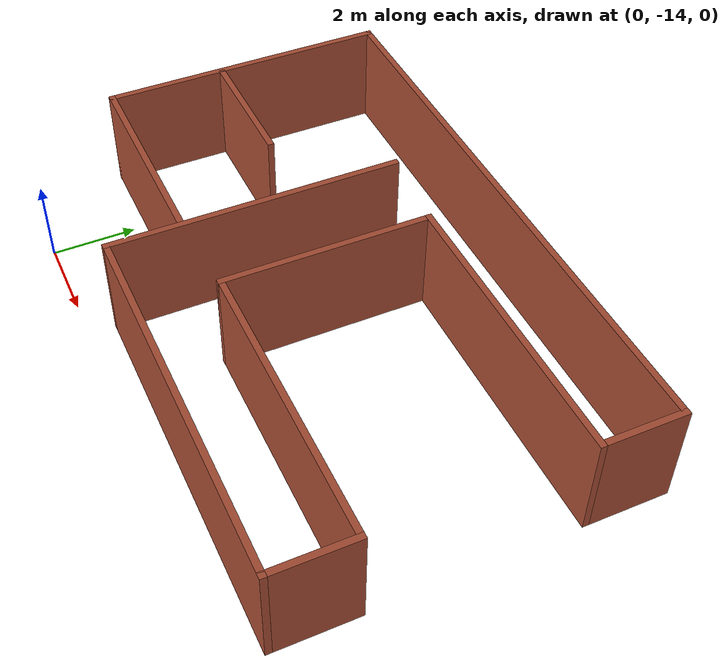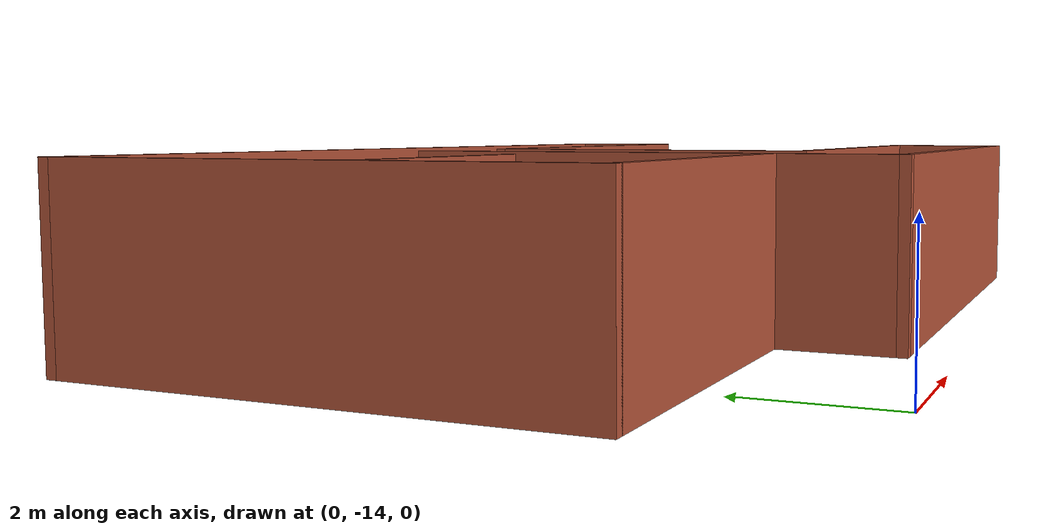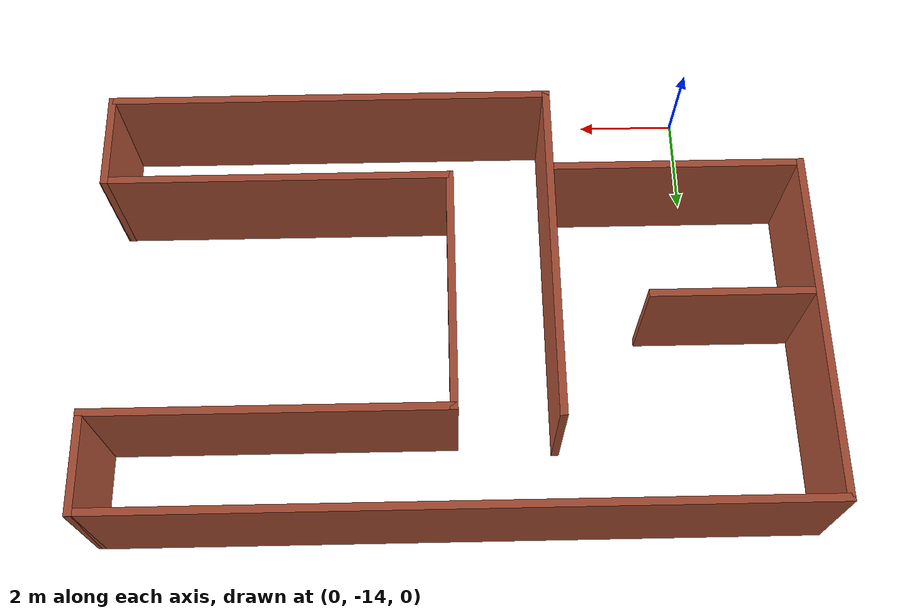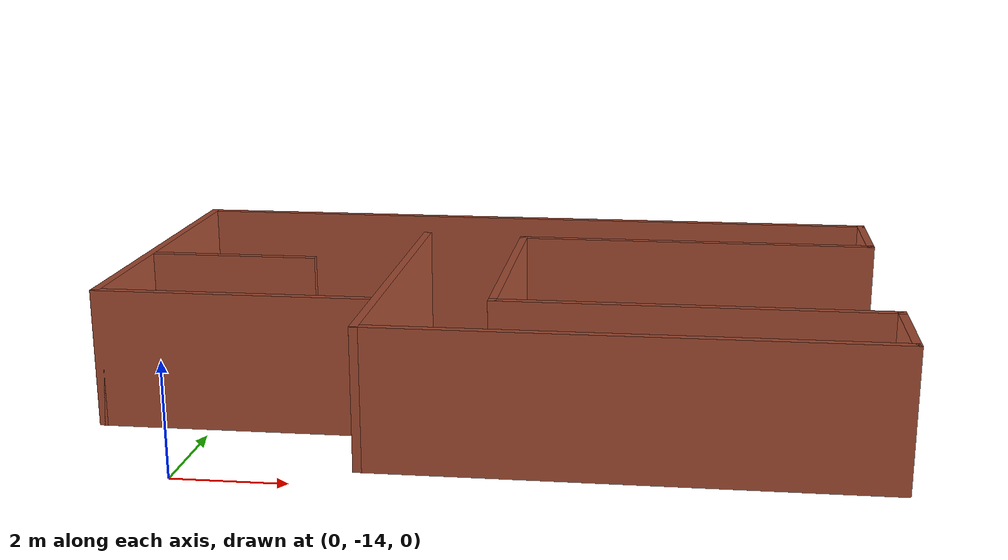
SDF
<?xml version='1.0'?>
<sdf version='1.7'>
  <model name='experiment4_walls_model'>
    <pose>4.915 -6.6925 0 0 -0 0</pose>
    <link name='Wall_0'>
      <collision name='Wall_0_Collision'>
        <geometry>
          <box>
            <size>14 0.15 2.5</size>
          </box>
        </geometry>
        <pose>0 0 1.25 0 -0 0</pose>
      </collision>
      <visual name='Wall_0_Visual'>
        <pose>0 0 1.25 0 -0 0</pose>
        <geometry>
          <box>
            <size>14 0.15 2.5</size>
          </box>
        </geometry>
        <material>
          <script>
            <uri>file://media/materials/scripts/gazebo.material</uri>
            <name>Gazebo/Bricks</name>
          </script>
          <ambient>1 1 1 1</ambient>
        </material>
        <meta>
          <layer>0</layer>
        </meta>
      </visual>
      <pose>0 1.9325 0 0 -0 0</pose>
    </link>
    <link name='Wall_1'>
      <collision name='Wall_1_Collision'>
        <geometry>
          <box>
            <size>2 0.15 2.5</size>
          </box>
        </geometry>
        <pose>0 0 1.25 0 -0 0</pose>
      </collision>
      <visual name='Wall_1_Visual'>
        <pose>0 0 1.25 0 -0 0</pose>
        <geometry>
          <box>
            <size>2 0.15 2.5</size>
          </box>
        </geometry>
        <material>
          <script>
            <uri>file://media/materials/scripts/gazebo.material</uri>
            <name>Gazebo/Bricks</name>
          </script>
          <ambient>1 1 1 1</ambient>
        </material>
        <meta>
          <layer>0</layer>
        </meta>
      </visual>
      <pose>6.925 1.0075 0 0 -0 -1.5708</pose>
    </link>
    <link name='Wall_11'>
      <collision name='Wall_11_Collision'>
        <geometry>
          <box>
            <size>7 0.15 2.5</size>
          </box>
        </geometry>
        <pose>0 0 1.25 0 -0 0</pose>
      </collision>
      <visual name='Wall_11_Visual'>
        <pose>0 0 1.25 0 -0 0</pose>
        <geometry>
          <box>
            <size>7 0.15 2.5</size>
          </box>
        </geometry>
        <material>
          <script>
            <uri>file://media/materials/scripts/gazebo.material</uri>
            <name>Gazebo/Bricks</name>
          </script>
          <ambient>1 1 1 1</ambient>
        </material>
        <meta>
          <layer>0</layer>
        </meta>
      </visual>
      <pose>-6.925 -1.4925 0 0 -0 -1.5708</pose>
    </link>
    <link name='Wall_12'>
      <collision name='Wall_12_Collision'>
        <geometry>
          <box>
            <size>5 0.15 2.5</size>
          </box>
        </geometry>
        <pose>0 0 1.25 0 -0 0</pose>
      </collision>
      <visual name='Wall_12_Visual'>
        <pose>0 0 1.25 0 -0 0</pose>
        <geometry>
          <box>
            <size>5 0.15 2.5</size>
          </box>
        </geometry>
        <material>
          <script>
            <uri>file://media/materials/scripts/gazebo.material</uri>
            <name>Gazebo/Bricks</name>
          </script>
          <ambient>1 1 1 1</ambient>
        </material>
        <meta>
          <layer>0</layer>
        </meta>
      </visual>
      <pose>-4.5 -4.9175 0 0 -0 0</pose>
    </link>
    <link name='Wall_17'>
      <collision name='Wall_17_Collision'>
        <geometry>
          <box>
            <size>3.25 0.15 2.5</size>
          </box>
        </geometry>
        <pose>0 0 1.25 0 -0 0</pose>
      </collision>
      <visual name='Wall_17_Visual'>
        <pose>0 0 1.25 0 -0 0</pose>
        <geometry>
          <box>
            <size>3.25 0.15 2.5</size>
          </box>
        </geometry>
        <material>
          <script>
            <uri>file://media/materials/scripts/gazebo.material</uri>
            <name>Gazebo/Bricks</name>
          </script>
          <ambient>1 1 1 1</ambient>
        </material>
        <meta>
          <layer>0</layer>
        </meta>
      </visual>
      <pose>-5.30211 -2.10555 0 0 -0 0</pose>
    </link>
    <link name='Wall_2'>
      <collision name='Wall_2_Collision'>
        <geometry>
          <box>
            <size>7 0.15 2.5</size>
          </box>
        </geometry>
        <pose>0 0 1.25 0 -0 0</pose>
      </collision>
      <visual name='Wall_2_Visual'>
        <pose>0 0 1.25 0 -0 0</pose>
        <geometry>
          <box>
            <size>7 0.15 2.5</size>
          </box>
        </geometry>
        <material>
          <script>
            <uri>file://media/materials/scripts/gazebo.material</uri>
            <name>Gazebo/Bricks</name>
          </script>
          <ambient>1 1 1 1</ambient>
        </material>
        <meta>
          <layer>0</layer>
        </meta>
      </visual>
      <pose>3.5 0.0825 0 0 -0 3.14159</pose>
    </link>
    <link name='Wall_3'>
      <collision name='Wall_3_Collision'>
        <geometry>
          <box>
            <size>5 0.15 2.5</size>
          </box>
        </geometry>
        <pose>0 0 1.25 0 -0 0</pose>
      </collision>
      <visual name='Wall_3_Visual'>
        <pose>0 0 1.25 0 -0 0</pose>
        <geometry>
          <box>
            <size>5 0.15 2.5</size>
          </box>
        </geometry>
        <material>
          <script>
            <uri>file://media/materials/scripts/gazebo.material</uri>
            <name>Gazebo/Bricks</name>
          </script>
          <ambient>1 1 1 1</ambient>
        </material>
        <meta>
          <layer>0</layer>
        </meta>
      </visual>
      <pose>0.075 -2.3425 0 0 -0 -1.5708</pose>
    </link>
    <link name='Wall_4'>
      <collision name='Wall_4_Collision'>
        <geometry>
          <box>
            <size>7 0.15 2.5</size>
          </box>
        </geometry>
        <pose>0 0 1.25 0 -0 0</pose>
      </collision>
      <visual name='Wall_4_Visual'>
        <pose>0 0 1.25 0 -0 0</pose>
        <geometry>
          <box>
            <size>7 0.15 2.5</size>
          </box>
        </geometry>
        <material>
          <script>
            <uri>file://media/materials/scripts/gazebo.material</uri>
            <name>Gazebo/Bricks</name>
          </script>
          <ambient>1 1 1 1</ambient>
        </material>
        <meta>
          <layer>0</layer>
        </meta>
      </visual>
      <pose>3.5 -4.7675 0 0 -0 0</pose>
    </link>
    <link name='Wall_7'>
      <collision name='Wall_7_Collision'>
        <geometry>
          <box>
            <size>2 0.15 2.5</size>
          </box>
        </geometry>
        <pose>0 0 1.25 0 -0 0</pose>
      </collision>
      <visual name='Wall_7_Visual'>
        <pose>0 0 1.25 0 -0 0</pose>
        <geometry>
          <box>
            <size>2 0.15 2.5</size>
          </box>
        </geometry>
        <material>
          <script>
            <uri>file://media/materials/scripts/gazebo.material</uri>
            <name>Gazebo/Bricks</name>
          </script>
          <ambient>1 1 1 1</ambient>
        </material>
        <meta>
          <layer>0</layer>
        </meta>
      </visual>
      <pose>6.925 -5.6925 0 0 -0 -1.5708</pose>
    </link>
    <link name='Wall_8'>
      <collision name='Wall_8_Collision'>
        <geometry>
          <box>
            <size>9 0.15 2.5</size>
          </box>
        </geometry>
        <pose>0 0 1.25 0 -0 0</pose>
      </collision>
      <visual name='Wall_8_Visual'>
        <pose>0 0 1.25 0 -0 0</pose>
        <geometry>
          <box>
            <size>9 0.15 2.5</size>
          </box>
        </geometry>
        <material>
          <script>
            <uri>file://media/materials/scripts/gazebo.material</uri>
            <name>Gazebo/Bricks</name>
          </script>
          <ambient>1 1 1 1</ambient>
        </material>
        <meta>
          <layer>0</layer>
        </meta>
      </visual>
      <pose>2.5 -6.6175 0 0 -0 3.14159</pose>
    </link>
    <link name='Wall_9'>
      <collision name='Wall_9_Collision'>
        <geometry>
          <box>
            <size>7 0.15 2.5</size>
          </box>
        </geometry>
        <pose>0 0 1.25 0 -0 0</pose>
      </collision>
      <visual name='Wall_9_Visual'>
        <pose>0 0 1.25 0 -0 0</pose>
        <geometry>
          <box>
            <size>7 0.15 2.5</size>
          </box>
        </geometry>
        <material>
          <script>
            <uri>file://media/materials/scripts/gazebo.material</uri>
            <name>Gazebo/Bricks</name>
          </script>
          <ambient>1 1 1 1</ambient>
        </material>
        <meta>
          <layer>0</layer>
        </meta>
      </visual>
      <pose>-1.925 -3.1925 0 0 -0 1.5708</pose>
    </link>
    <static>1</static>
  </model>
</sdf>
